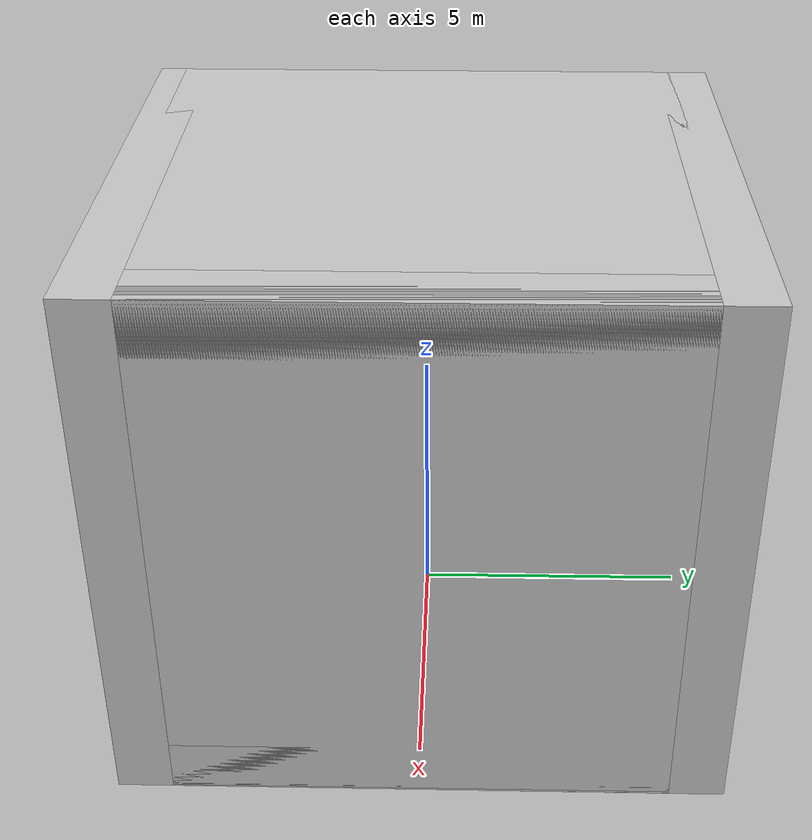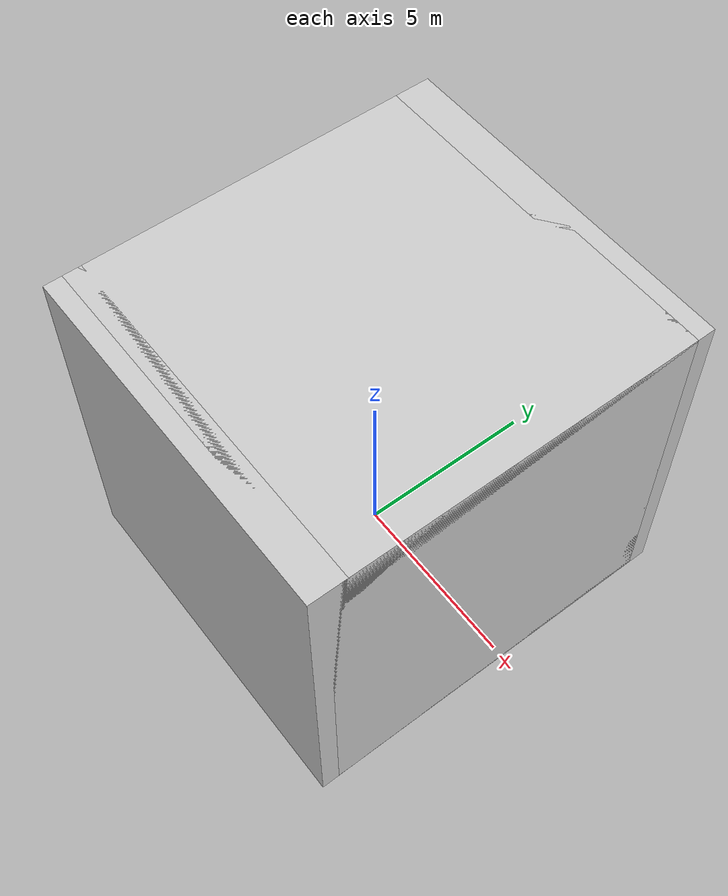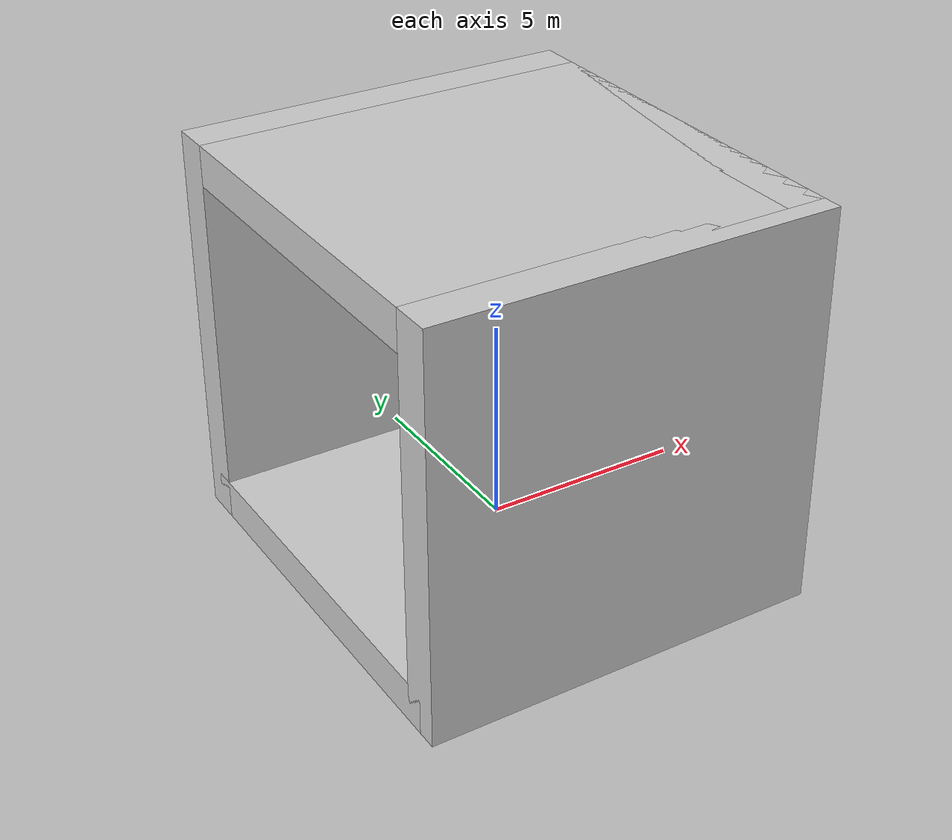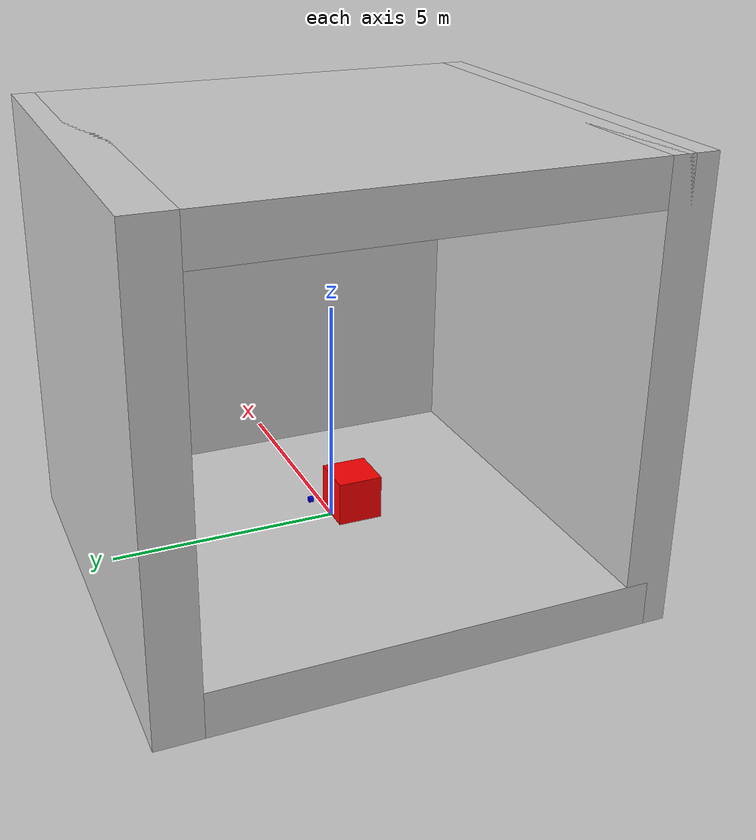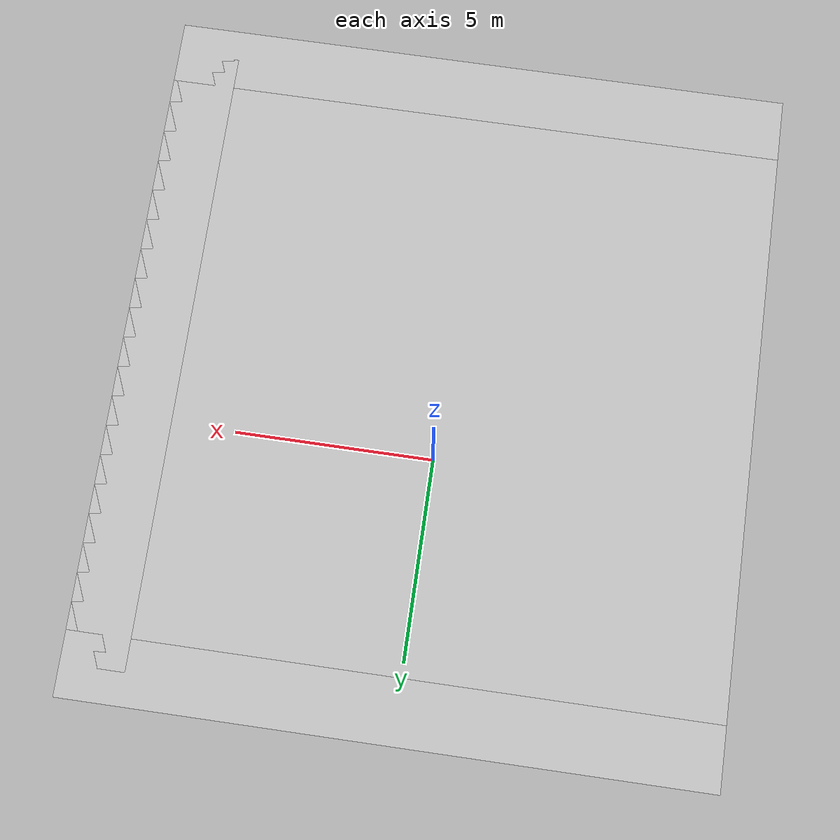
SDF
<?xml version="1.0" ?>
<sdf version="1.6">
  <world name="sensors">
    <plugin
      filename="gz-sim-physics-system"
      name="gz::sim::systems::Physics">
    </plugin>
    <plugin
      filename="gz-sim-sensors-system"
      name="gz::sim::systems::Sensors">
      <render_engine>ogre2</render_engine>

      <global_illumination type="vct">
        <enabled>false</enabled>
        <resolution>16 16 16</resolution>
        <octant_count>1 1 1</octant_count>
        <bounce_count>6</bounce_count>
        <high_quality>true</high_quality>
        <anisotropic>true</anisotropic>
        <thin_wall_counter>1.0</thin_wall_counter>
        <conserve_memory>true</conserve_memory>
        <debug_vis_mode>none</debug_vis_mode>
      </global_illumination>
    </plugin>
    <plugin
      filename="gz-sim-user-commands-system"
      name="gz::sim::systems::UserCommands">
    </plugin>

    <scene>
      <ambient>0 0 0</ambient>
      <background>0.1 0.1 0.1</background>
    </scene>

    <!--lighting-->
    <light type="point" name="ceiling_light">
    <pose>0 -0.5 2.5 0 0 0</pose>
    <diffuse>1 1 1 1</diffuse>
    <specular>0 0 0 0</specular>
    <attenuation>
        <range>50</range>
        <linear>0</linear>
        <constant>0</constant>
        <quadratic>0.02</quadratic>
    </attenuation>
    <cast_shadows>true</cast_shadows>
    <visualize>true</visualize>
    <intensity>1.0</intensity>
    </light>

    <!--wall models-->
    <model name="wall_left">
    <pose>0 5 4 0 0 0</pose>
    <static>true</static>
    <link name="link">
      <collision name="collision">
      <geometry>
        <box>
        <size>10 1 10</size>
        </box>
      </geometry>
      </collision>
      <visual name="visual">
      <geometry>
        <box>
        <size>10 1 10</size>
        </box>
      </geometry>
      <material>
        <ambient>0.8 0.8 0.8 1</ambient>
        <diffuse>0.8 0.8 0.8 1</diffuse>
        <specular>0.8 0.8 0.8 1</specular>
      </material>
      </visual>
    </link>
    </model>

    <model name="wall_right">
    <pose>0 -5 4 0 0 0</pose>
    <static>true</static>
    <link name="link">
      <collision name="collision">
      <geometry>
        <box>
        <size>10 1 10</size>
        </box>
      </geometry>
      </collision>
      <visual name="visual">
      <geometry>
        <box>
        <size>10 1 10</size>
        </box>
      </geometry>
      <material>
        <ambient>0.8 0.8 0.8 1</ambient>
        <diffuse>0.8 0.8 0.8 1</diffuse>
        <specular>0.8 0.8 0.8 1</specular>
      </material>
      </visual>
    </link>
    </model>

    <model name="floor">
    <pose>0 0 -0.5 0 0 0</pose>
    <static>true</static>
    <link name="link">
      <collision name="collision">
      <geometry>
        <box>
        <size>10 10 1</size>
        </box>
      </geometry>
      </collision>
      <visual name="visual">
      <geometry>
        <box>
        <size>10 10 1</size>
        </box>
      </geometry>
      <material>
        <ambient>0.8 0.8 0.8 1</ambient>
        <diffuse>0.8 0.8 0.8 1</diffuse>
        <specular>0.8 0.8 0.8 1</specular>
      </material>
      </visual>
    </link>
    </model>

    <model name="ceiling">
    <pose>0 0 8.5 0 0 0</pose>
    <static>true</static>
    <link name="link">
      <collision name="collision">
      <geometry>
        <box>
        <size>10 10 1</size>
        </box>
      </geometry>
      </collision>
      <visual name="visual">
      <geometry>
        <box>
        <size>10 10 1</size>
        </box>
      </geometry>
      <material>
        <ambient>0.8 0.8 0.8 1</ambient>
        <diffuse>0.8 0.8 0.8 1</diffuse>
        <specular>0.8 0.8 0.8 1</specular>
      </material>
      </visual>
    </link>
    </model>

    <model name="wall_back">
    <pose>4.5 0 4 0 0 0</pose>
    <static>true</static>
    <link name="link">
      <collision name="collision">
      <geometry>
        <box>
        <size>1 10 10</size>
        </box>
      </geometry>
      </collision>
      <visual name="visual">
      <geometry>
        <box>
        <size>1 10 10</size>
        </box>
      </geometry>
      <material>
        <ambient>0.8 0.8 0.8 1</ambient>
        <diffuse>0.8 0.8 0.8 1</diffuse>
        <specular>0.8 0.8 0.8 1</specular>
      </material>
      </visual>
    </link>
    </model>

    <!--scene objects-->
    <model name="box">
    <pose>0 -0.5 0.5 0 0 0</pose>
    <link name="box_link">
      <collision name="box_collision">
      <geometry>
        <box>
        <size>1 1 1</size>
        </box>
      </geometry>
      </collision>

      <visual name="box_visual">
      <geometry>
        <box>
        <size>1 1 1</size>
        </box>
      </geometry>
      <material>
        <ambient>1 0 0 1</ambient>
        <diffuse>1 0 0 1</diffuse>
        <specular>1 1 1 1</specular>
      </material>
      </visual>
    </link>
    </model>

    <!--camera sensor-->
    <model name="camera">
      <static>true</static>
      <pose>0 0.5 0.5 0 0 -1.57</pose>
      <link name="link">
        <collision name="collision">
          <geometry>
            <box>
              <size>0.1 0.1 0.1</size>
            </box>
          </geometry>
        </collision>
        <visual name="visual">
          <geometry>
            <box>
              <size>0.1 0.1 0.1</size>
            </box>
          </geometry>
          <material>
            <ambient>0 0 1 1</ambient>
            <diffuse>0 0 1 1</diffuse>
            <specular>1 1 1 1</specular>
          </material>
        </visual>
        <sensor name="camera" type="camera">
          <camera>
            <horizontal_fov>1.047</horizontal_fov>
            <image>
              <width>320</width>
              <height>240</height>
            </image>
            <clip>
              <near>0.1</near>
              <far>100</far>
            </clip>
          </camera>
          <update_rate>30</update_rate>
          <topic>camera</topic>
        </sensor>
      </link>
    </model>
  </world>
</sdf>
